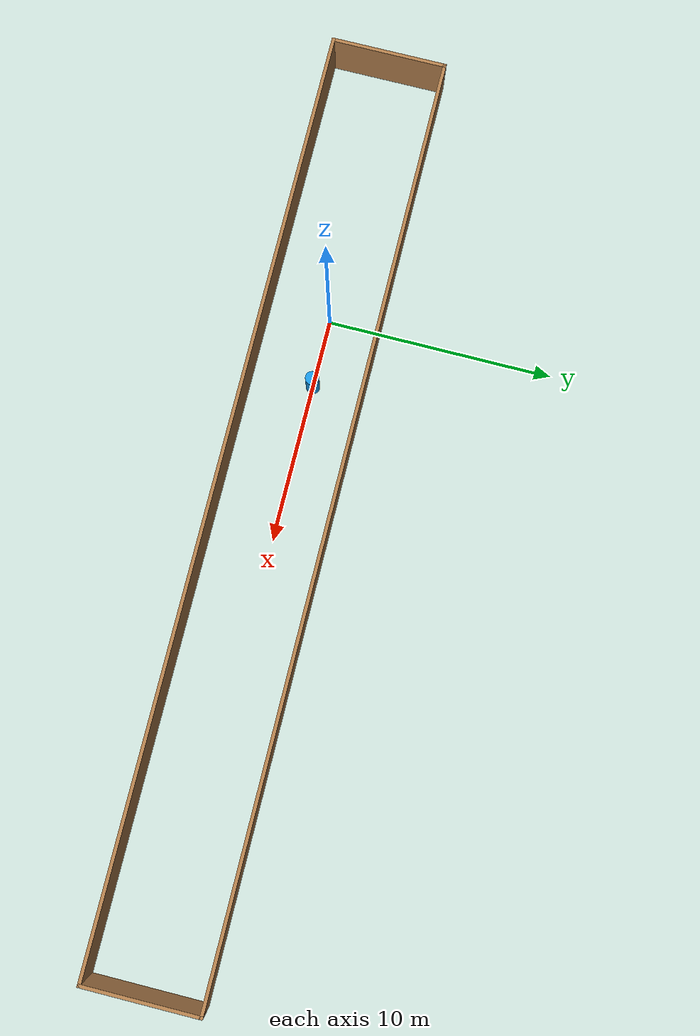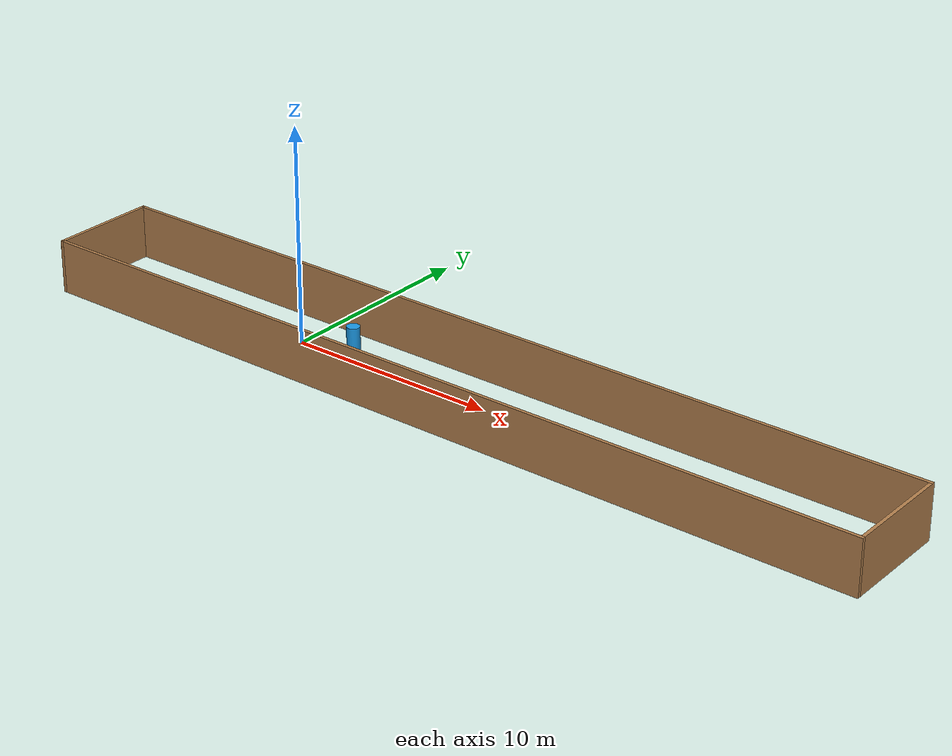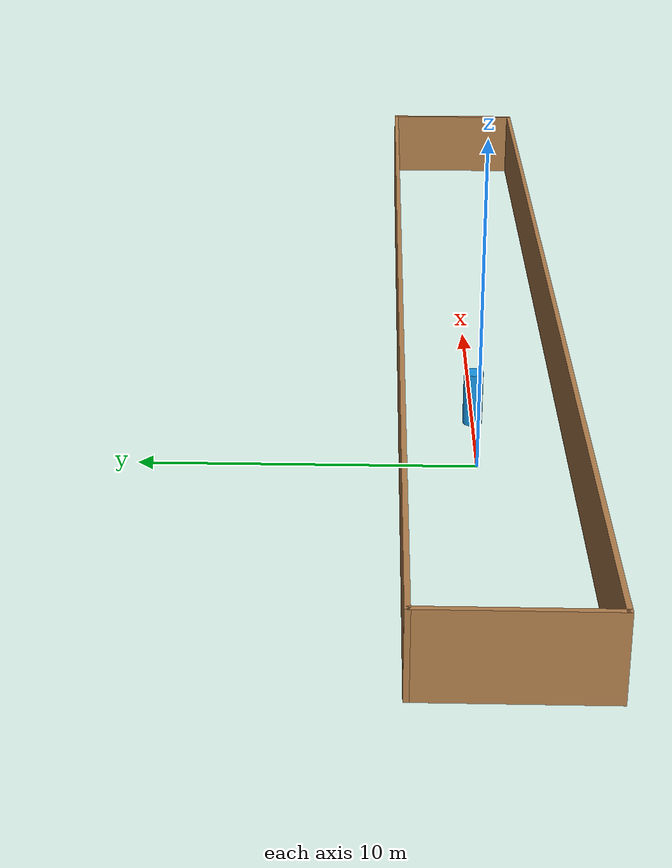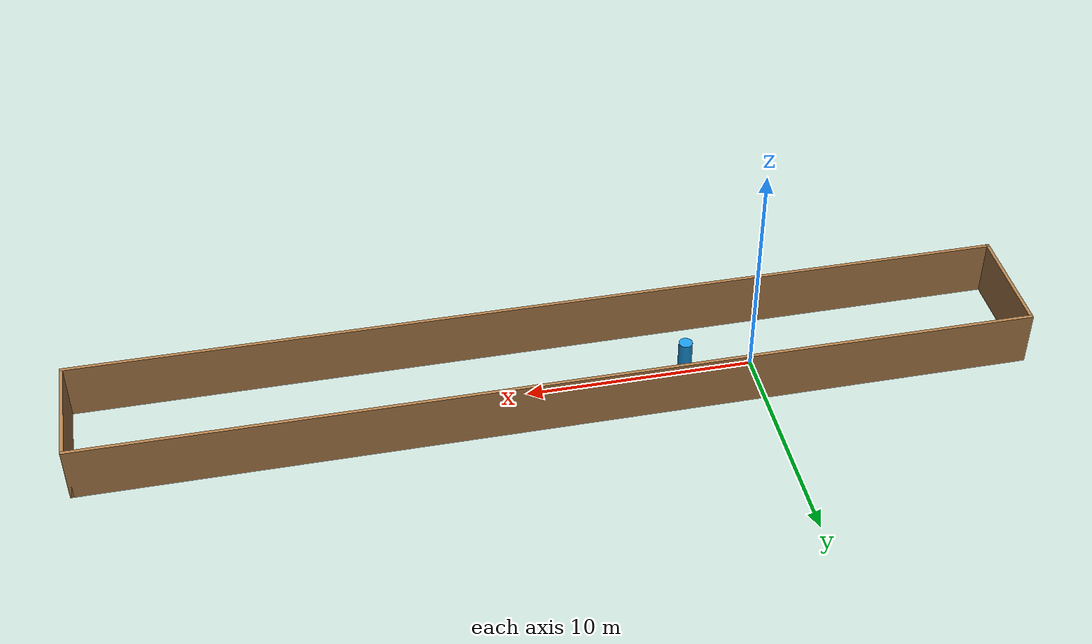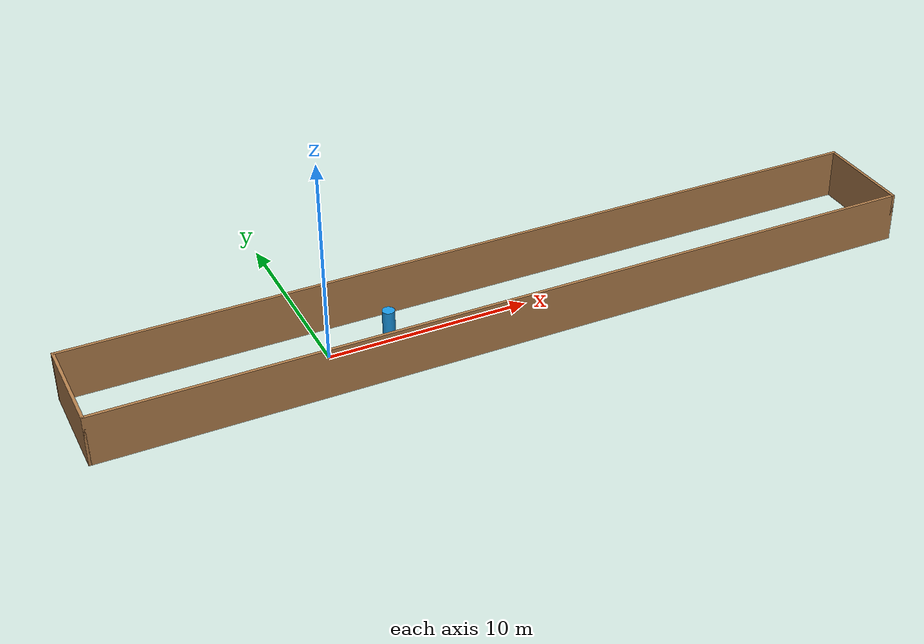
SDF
<sdf version='1.7'>
  <world name='default'>
    <!-- 动态障碍物：圆柱体，执行半圆绕行。
         名称以 dynamic_cylinder 开头并编码尺寸，方便 fake_detector 识别与解析尺寸 -->
    <model name="dynamic_cylinder_0.6_0.6_1.7">
      <!-- 起点：从前方接近 -->
      <pose>3.0 0 0 0 0 0</pose>
      <static>0</static>
      <link name="body">
        <inertial>
          <mass>5</mass>
          <inertia>
            <ixx>0.1</ixx>
            <iyy>0.1</iyy>
            <izz>0.1</izz>
            <ixy>0</ixy>
            <ixz>0</ixz>
            <iyz>0</iyz>
          </inertia>
        </inertial>
        <collision name="collision">
          <pose>0 0 0.85 0 0 0</pose>
          <geometry>
            <cylinder>
              <radius>0.3</radius>
              <length>1.7</length>
            </cylinder>
          </geometry>
        </collision>
        <visual name="visual">
          <pose>0 0 0.85 0 0 0</pose>
          <geometry>
            <cylinder>
              <radius>0.3</radius>
              <length>1.7</length>
            </cylinder>
          </geometry>
          <material>
            <ambient>0.1 0.6 0.9 1</ambient>
            <diffuse>0.1 0.6 0.9 1</diffuse>
          </material>
        </visual>
      </link>
      <plugin name="obstacle_motion" filename="libobstaclePathPlugin.so">
        <loop>0</loop>
        <sin>0</sin>
        <velocity>1.0</velocity>
        <angular_velocity>3.0</angular_velocity>
        <!-- 路径：直行接近 -> 半圆绕行（经过无人机上方）-> 继续直行 -->
        <path>
          <!-- 直行接近阶段 -->
          <waypoint>3.0 0.0 0.0</waypoint>
          <waypoint>2.5 0.0 0.0</waypoint>
          <waypoint>2.0 0.0 0.0</waypoint>
          <waypoint>1.5 0.0 0.0</waypoint>
          <waypoint>1.0 0.0 0.0</waypoint>
          <!-- 开始半圆绕行（从右侧绕到左侧，经过无人机上方） -->
          <waypoint>0.8 0.2 0.0</waypoint>
          <waypoint>0.5 0.5 0.0</waypoint>
          <waypoint>0.2 0.8 0.0</waypoint>
          <waypoint>0.0 1.0 0.0</waypoint>
          <waypoint>-0.2 0.8 0.0</waypoint>
          <waypoint>-0.5 0.5 0.0</waypoint>
          <waypoint>-0.8 0.2 0.0</waypoint>
          <!-- 回到中线，继续直行 -->
          <waypoint>-1.0 0.0 0.0</waypoint>
          <waypoint>-1.5 0.0 0.0</waypoint>
          <waypoint>-2.0 0.0 0.0</waypoint>
          <waypoint>-2.5 0.0 0.0</waypoint>
          <waypoint>-3.0 0.0 0.0</waypoint>
        </path>
      </plugin>
    </model>

    <!-- 光照设置 -->
    <light name='sun' type='directional'>
      <cast_shadows>1</cast_shadows>
      <pose>0 0 10 0 -0 0</pose>
      <diffuse>0.8 0.8 0.8 1</diffuse>
      <specular>0.2 0.2 0.2 1</specular>
      <attenuation>
        <range>1000</range>
        <constant>0.9</constant>
        <linear>0.01</linear>
        <quadratic>0.001</quadratic>
      </attenuation>
      <direction>-0.5 0.1 -0.9</direction>
      <spot>
        <inner_angle>0</inner_angle>
        <outer_angle>0</outer_angle>
        <falloff>0</falloff>
      </spot>
    </light>

    <!-- 添加不可见的地面，用于物理引擎和无人机 spawn -->
    <model name='ground_plane'>
      <static>1</static>
      <link name='link'>
        <collision name='collision'>
          <geometry>
            <plane>
              <normal>0 0 1</normal>
              <size>100 100</size>
            </plane>
          </geometry>
          <surface>
            <contact>
              <collide_bitmask>65535</collide_bitmask>
              <ode/>
            </contact>
            <friction>
              <ode>
                <mu>100</mu>
                <mu2>50</mu2>
              </ode>
              <torsional>
                <ode/>
              </torsional>
            </friction>
            <bounce/>
          </surface>
          <max_contacts>10</max_contacts>
        </collision>
        <!-- 不添加 visual，使地面不可见 -->
        <self_collide>0</self_collide>
        <enable_wind>0</enable_wind>
        <kinematic>0</kinematic>
      </link>
    </model>

    <gravity>0 0 -9.8</gravity>
    <magnetic_field>6e-06 2.3e-05 -4.2e-05</magnetic_field>
    <atmosphere type='adiabatic'/>
    <physics type='ode'>
      <max_step_size>0.002</max_step_size>
      <real_time_factor>1</real_time_factor>
      <real_time_update_rate>500</real_time_update_rate>
    </physics>
    <scene>
      <ambient>0.4 0.4 0.4 1</ambient>
      <background>0.7 0.7 0.7 1</background>
      <shadows>1</shadows>
    </scene>
    <wind/>
    <spherical_coordinates>
      <surface_model>EARTH_WGS84</surface_model>
      <latitude_deg>0</latitude_deg>
      <longitude_deg>0</longitude_deg>
      <elevation>0</elevation>
      <heading_deg>0</heading_deg>
    </spherical_coordinates>

    <!-- 走廊：保留原始走廊结构，使用原始位置 -->
    <model name='corridor'>
      <pose>8.73735 -0.275929 0 0 -0 0</pose>
      <link name='Wall_0'>
        <collision name='Wall_0_Collision'>
          <geometry>
            <box>
              <size>41.15 0.15 2.5</size>
            </box>
          </geometry>
          <pose>0 0 1.25 0 -0 0</pose>
          <max_contacts>10</max_contacts>
          <surface>
            <contact>
              <ode/>
            </contact>
            <bounce/>
            <friction>
              <torsional>
                <ode/>
              </torsional>
              <ode/>
            </friction>
          </surface>
        </collision>
        <visual name='Wall_0_Visual'>
          <pose>0 0 1.25 0 -0 0</pose>
          <geometry>
            <box>
              <size>41.15 0.15 2.5</size>
            </box>
          </geometry>
          <material>
            <script>
              <uri>file://media/materials/scripts/gazebo.material</uri>
              <name>Gazebo/Wood</name>
            </script>
            <ambient>1 1 1 1</ambient>
          </material>
          <meta>
            <layer>0</layer>
          </meta>
        </visual>
        <pose>0 2.5 0 0 -0 0</pose>
        <self_collide>0</self_collide>
        <enable_wind>0</enable_wind>
        <kinematic>0</kinematic>
      </link>
      <link name='Wall_2'>
        <collision name='Wall_2_Collision'>
          <geometry>
            <box>
              <size>41.15 0.15 2.5</size>
            </box>
          </geometry>
          <pose>0 0 1.25 0 -0 0</pose>
          <max_contacts>10</max_contacts>
          <surface>
            <contact>
              <ode/>
            </contact>
            <bounce/>
            <friction>
              <torsional>
                <ode/>
              </torsional>
              <ode/>
            </friction>
          </surface>
        </collision>
        <visual name='Wall_2_Visual'>
          <pose>0 0 1.25 0 -0 0</pose>
          <geometry>
            <box>
              <size>41.15 0.15 2.5</size>
            </box>
          </geometry>
          <material>
            <script>
              <uri>file://media/materials/scripts/gazebo.material</uri>
              <name>Gazebo/Wood</name>
            </script>
            <ambient>1 1 1 1</ambient>
          </material>
          <meta>
            <layer>0</layer>
          </meta>
        </visual>
        <pose>0 -2.5 0 0 -0 0</pose>
        <self_collide>0</self_collide>
        <enable_wind>0</enable_wind>
        <kinematic>0</kinematic>
      </link>
      <!-- 前后墙保留，但可以注释掉如果不需要 -->
      <link name='Wall_4'>
        <collision name='Wall_4_Collision'>
          <geometry>
            <box>
              <size>5.15 0.15 2.5</size>
            </box>
          </geometry>
          <pose>0 0 1.25 0 -0 0</pose>
          <max_contacts>10</max_contacts>
          <surface>
            <contact>
              <ode/>
            </contact>
            <bounce/>
            <friction>
              <torsional>
                <ode/>
              </torsional>
              <ode/>
            </friction>
          </surface>
        </collision>
        <visual name='Wall_4_Visual'>
          <pose>0 0 1.25 0 -0 0</pose>
          <geometry>
            <box>
              <size>5.15 0.15 2.5</size>
            </box>
          </geometry>
          <material>
            <script>
              <uri>file://media/materials/scripts/gazebo.material</uri>
              <name>Gazebo/Wood</name>
            </script>
            <ambient>1 1 1 1</ambient>
          </material>
          <meta>
            <layer>0</layer>
          </meta>
        </visual>
        <pose>-20.5 0 0 0 -0 -1.5708</pose>
        <self_collide>0</self_collide>
        <enable_wind>0</enable_wind>
        <kinematic>0</kinematic>
      </link>
      <link name='Wall_6'>
        <collision name='Wall_6_Collision'>
          <geometry>
            <box>
              <size>5.15 0.15 2.5</size>
            </box>
          </geometry>
          <pose>0 0 1.25 0 -0 0</pose>
          <max_contacts>10</max_contacts>
          <surface>
            <contact>
              <ode/>
            </contact>
            <bounce/>
            <friction>
              <torsional>
                <ode/>
              </torsional>
              <ode/>
            </friction>
          </surface>
        </collision>
        <visual name='Wall_6_Visual'>
          <pose>0 0 1.25 0 -0 0</pose>
          <geometry>
            <box>
              <size>5.15 0.15 2.5</size>
            </box>
          </geometry>
          <material>
            <script>
              <uri>file://media/materials/scripts/gazebo.material</uri>
              <name>Gazebo/Wood</name>
            </script>
            <ambient>1 1 1 1</ambient>
          </material>
          <meta>
            <layer>0</layer>
          </meta>
        </visual>
        <pose>20.5 0 0 0 -0 -1.5708</pose>
        <self_collide>0</self_collide>
        <enable_wind>0</enable_wind>
        <kinematic>0</kinematic>
      </link>
      <static>1</static>
    </model>

    <!-- 静态障碍物已移除 -->
  </world>
</sdf>
